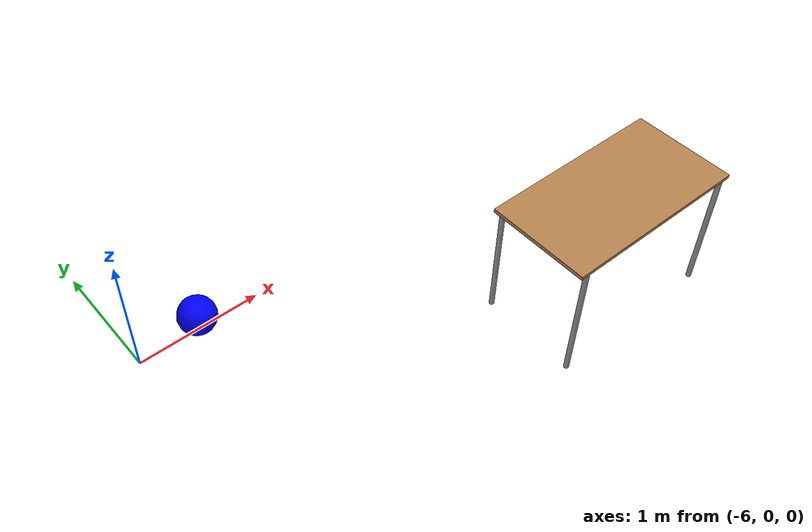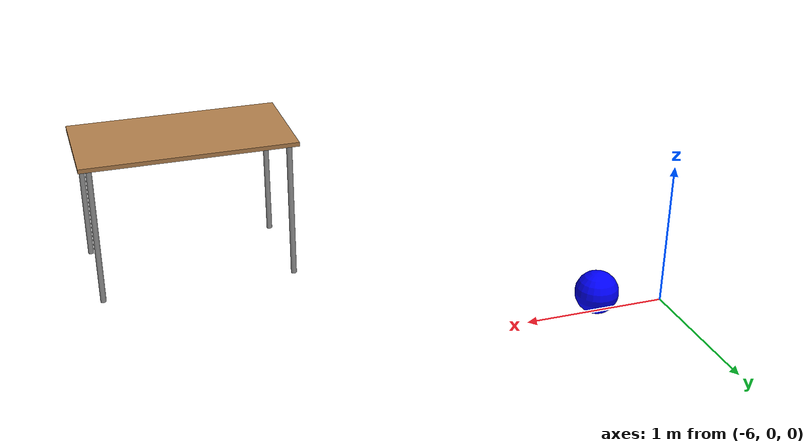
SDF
<sdf version="1.4">
 <world name="default">
  <model name="unit_sphere_3">
   <static>1</static>
   <pose>-5.5 0 0.15 0 -0 0</pose>
   <link name="link">
    <inertial>
     <mass>1</mass>
     <inertia><ixx>1</ixx><ixy>0</ixy><ixz>0</ixz><iyy>1</iyy><iyz>0</iyz><izz>1</izz></inertia>
    </inertial>
    <collision name="collision"><geometry><sphere><radius>0.15</radius></sphere></geometry></collision>
    <visual name="visual">
     <material>
      <ambient>0 0 1 1</ambient>
      <diffuse>0 0 1 1</diffuse>
      <specular>0.1 0.1 0.1 1</specular>
      <emissive>0 0 0 0</emissive>
     </material>
     <geometry><sphere><radius>0.15</radius></sphere></geometry>
     <material>
      <script><uri>file://media/materials/scripts/gazebo.material</uri><name>Gazebo/White</name></script>
     </material>
    </visual>
    <velocity_decay><linear>0</linear><angular>0</angular></velocity_decay>
   </link>
  </model>
  <model name="table">
   <static>0</static>
   <link name="link">
    <collision name="surface">
     <pose>0 0 1 0 -0 0</pose>
     <geometry><box><size>1.5 0.8 0.03</size></box></geometry>
    </collision>
    <visual name="visual1">
     <pose>0 0 1 0 -0 0</pose>
     <geometry><box><size>1.5 0.8 0.03</size></box></geometry>
     <material>
      <script><uri>file://media/materials/scripts/gazebo.material</uri><name>Gazebo/Wood</name></script>
     </material>
    </visual>
    <collision name="front_left_leg">
     <pose>0.68 0.38 0.5 0 -0 0</pose>
     <geometry><cylinder><radius>0.02</radius><length>1</length></cylinder></geometry>
    </collision>
    <visual name="front_left_leg">
     <pose>0.68 0.38 0.5 0 -0 0</pose>
     <geometry><cylinder><radius>0.02</radius><length>1</length></cylinder></geometry>
     <material>
      <script><uri>file://media/materials/scripts/gazebo.material</uri><name>Gazebo/Grey</name></script>
     </material>
    </visual>
    <collision name="front_right_leg">
     <pose>0.68 -0.38 0.5 0 -0 0</pose>
     <geometry><cylinder><radius>0.02</radius><length>1</length></cylinder></geometry>
    </collision>
    <visual name="front_right_leg">
     <pose>0.68 -0.38 0.5 0 -0 0</pose>
     <geometry><cylinder><radius>0.02</radius><length>1</length></cylinder></geometry>
     <material>
      <script><uri>file://media/materials/scripts/gazebo.material</uri><name>Gazebo/Grey</name></script>
     </material>
    </visual>
    <collision name="back_right_leg">
     <pose>-0.68 -0.38 0.5 0 -0 0</pose>
     <geometry><cylinder><radius>0.02</radius><length>1</length></cylinder></geometry>
    </collision>
    <visual name="back_right_leg">
     <pose>-0.68 -0.38 0.5 0 -0 0</pose>
     <geometry><cylinder><radius>0.02</radius><length>1</length></cylinder></geometry>
     <material>
      <script><uri>file://media/materials/scripts/gazebo.material</uri><name>Gazebo/Grey</name></script>
     </material>
    </visual>
    <collision name="back_left_leg">
     <pose>-0.68 0.38 0.5 0 -0 0</pose>
     <geometry><cylinder><radius>0.02</radius><length>1</length></cylinder></geometry>
    </collision>
    <visual name="back_left_leg">
     <pose>-0.68 0.38 0.5 0 -0 0</pose>
     <geometry><cylinder><radius>0.02</radius><length>1</length></cylinder></geometry>
     <material>
      <script><uri>file://media/materials/scripts/gazebo.material</uri><name>Gazebo/Grey</name></script>
     </material>
    </visual>
    <velocity_decay><linear>0</linear><angular>0</angular></velocity_decay>
   </link>
   <pose>-3 -1.56047 0 0 -0 0</pose>
  </model>
 </world>
</sdf>
